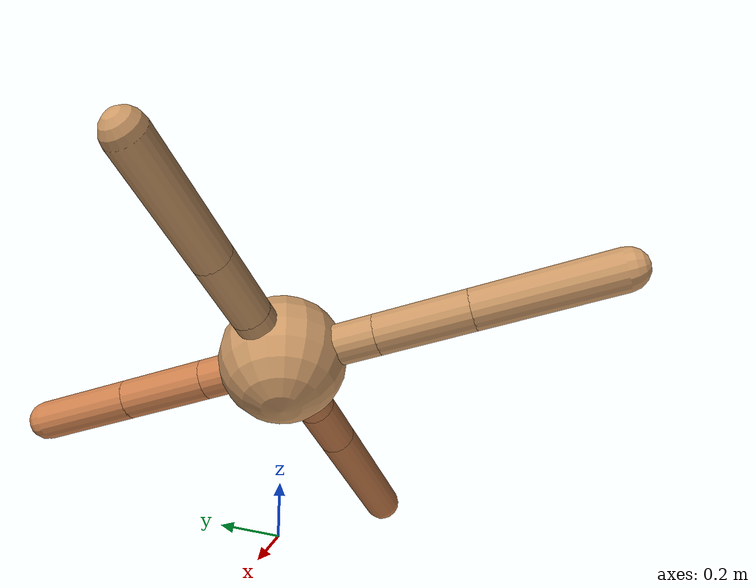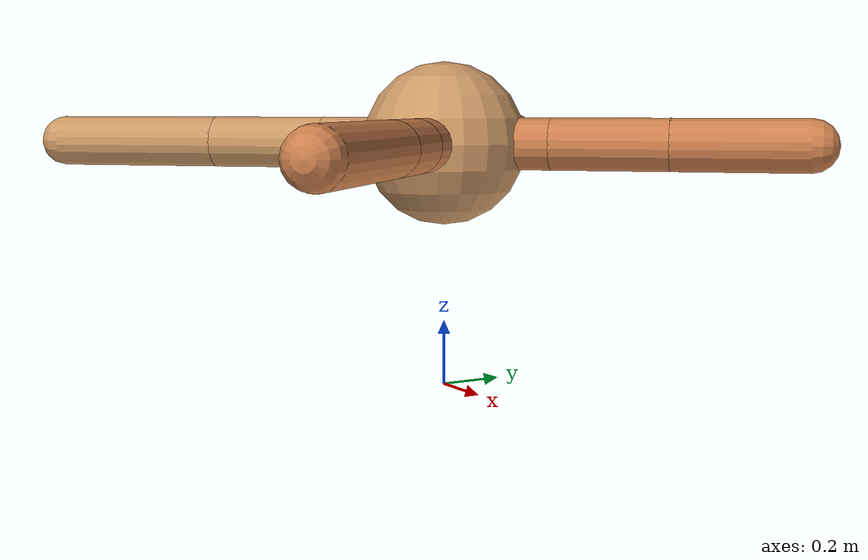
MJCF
<mujoco model="ant">
  <compiler angle="degree" coordinate="local" inertiafromgeom="true" />
  <option integrator="RK4" timestep="0.01" />
  <custom>
    <numeric data="0.0 0.0 0.55 1.0 0.0 0.0 0.0 0.0 1.0 0.0 -1.0 0.0 -1.0 0.0 1.0" name="init_qpos" />
  </custom>
  <default>
    <joint armature="1" damping="1" limited="true" />
    <geom conaffinity="0" condim="3" density="5.0" friction="1.5 0.1 0.1" margin="0.01" rgba="0.8 0.6 0.4 1" />
  </default>
  <worldbody>
    <body name="torso" pos="0 0 0.75">
      <geom name="torso_geom" pos="0 0 0" size="0.25" type="sphere" />

      <body name="front_left_leg" pos="0 0 0">
        <geom fromto="0.0 0.0 0.0 0.23438535655285633 0.23438535655285633 0.0" name="aux_1_geom" size="0.08" type="capsule" rgba=".8 .5 .3 1" />
        <body name="aux_1" pos="0.23438535655285633 0.23438535655285633 0.0">
          <joint axis="0 0 1" name="hip_1" pos="0.0 0.0 0.0" range="-40 40" type="hinge" />
          <geom fromto="0.0 0.0 0.0 0.2510567588477863 0.2510567588477863 0.0" name="left_leg_geom" size="0.08" type="capsule" rgba=".8 .5 .3 1" />
          <body pos="0.2510567588477863 0.2510567588477863 0.0" name="front_left_foot">
            <joint axis="-1 1 0" name="ankle_1" pos="0.0 0.0 0.0" range="30 100" type="hinge" />
            <geom fromto="0.0 0.0 0.0 0.28399312939614013 0.28399312939614013 0.0" name="left_ankle_geom" size="0.08" type="capsule" rgba=".8 .5 .3 1" />
          </body>
        </body>
      </body>
      <body name="front_right_leg" pos="0 0 0">
        <geom fromto="0.0 0.0 0.0 -0.20499208597913113 0.20499208597913113 0.0" name="aux_2_geom" size="0.08" type="capsule" />
        <body name="aux_2" pos="-0.20499208597913113 0.20499208597913113 0.0">
          <joint axis="0 0 1" name="hip_2" pos="0.0 0.0 0.0" range="-40 40" type="hinge" />
          <geom fromto="0.0 0.0 0.0 -0.2124372002593532 0.2124372002593532 0.0" name="right_leg_geom" size="0.08" type="capsule" />
          <body pos="-0.2124372002593532 0.2124372002593532 0.0" name="front_right_foot">
            <joint axis="1 1 0" name="ankle_2" pos="0.0 0.0 0.0" range="-100 -30" type="hinge" />
            <geom fromto="0.0 0.0 0.0 -0.38057133313524283 0.38057133313524283 0.0" name="right_ankle_geom" size="0.08" type="capsule" />
          </body>
        </body>
      </body>
      <body name="left_back_leg" pos="0 0 0">
        <geom fromto="0.0 0.0 0.0 -0.2740366692272874 -0.2740366692272874 0.0" name="aux_3_geom" size="0.08" type="capsule" />
        <body name="aux_3" pos="-0.2740366692272874 -0.2740366692272874 0.0">
          <joint axis="0 0 1" name="hip_3" pos="0.0 0.0 0.0" range="-40 40" type="hinge" />
          <geom fromto="0.0 0.0 0.0 -0.25503380654495206 -0.25503380654495206 0.0" name="back_leg_geom" size="0.08" type="capsule" />
          <body pos="-0.25503380654495206 -0.25503380654495206 0.0" name="left_back_foot">
            <joint axis="-1 1 0" name="ankle_3" pos="0.0 0.0 0.0" range="-100 -30" type="hinge" />
            <geom fromto="0.0 0.0 0.0 -0.37744786894257915 -0.37744786894257915 0.0" name="third_ankle_geom" size="0.08" type="capsule" />
          </body>
        </body>
      </body>
      <body name="right_back_leg" pos="0 0 0">
        <geom fromto="0.0 0.0 0.0 0.24293413863532376 -0.24293413863532376 0.0" name="aux_4_geom" size="0.08" type="capsule" rgba=".8 .5 .3 1" />
        <body name="aux_4" pos="0.24293413863532376 -0.24293413863532376 0.0">
          <joint axis="0 0 1" name="hip_4" pos="0.0 0.0 0.0" range="-40 40" type="hinge" />
          <geom fromto="0.0 0.0 0.0 0.17062112747925506 -0.17062112747925506 0.0" name="rightback_leg_geom" size="0.08" type="capsule" rgba=".8 .5 .3 1" />
          <body pos="0.17062112747925506 -0.17062112747925506 0.0" name="right_back_foot">
            <joint axis="1 1 0" name="ankle_4" pos="0.0 0.0 0.0" range="30 100" type="hinge" />
            <geom fromto="0.0 0.0 0.0 0.45301408626908196 -0.45301408626908196 0.0" name="fourth_ankle_geom" size="0.08" type="capsule" rgba=".8 .5 .3 1" />
          </body>
        </body>
      </body>
    </body>
  </worldbody>
  <actuator>
    <motor ctrllimited="true" ctrlrange="-1.0 1.0" joint="hip_4" gear="150" />
    <motor ctrllimited="true" ctrlrange="-1.0 1.0" joint="ankle_4" gear="150" />
    <motor ctrllimited="true" ctrlrange="-1.0 1.0" joint="hip_1" gear="150" />
    <motor ctrllimited="true" ctrlrange="-1.0 1.0" joint="ankle_1" gear="150" />
    <motor ctrllimited="true" ctrlrange="-1.0 1.0" joint="hip_2" gear="150" />
    <motor ctrllimited="true" ctrlrange="-1.0 1.0" joint="ankle_2" gear="150" />
    <motor ctrllimited="true" ctrlrange="-1.0 1.0" joint="hip_3" gear="150" />
    <motor ctrllimited="true" ctrlrange="-1.0 1.0" joint="ankle_3" gear="150" />
  </actuator>
</mujoco>
